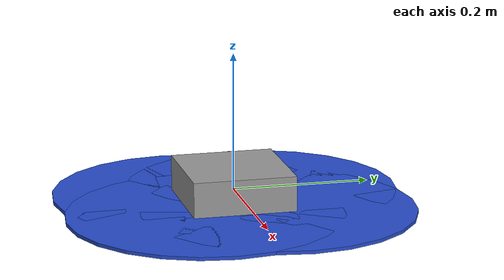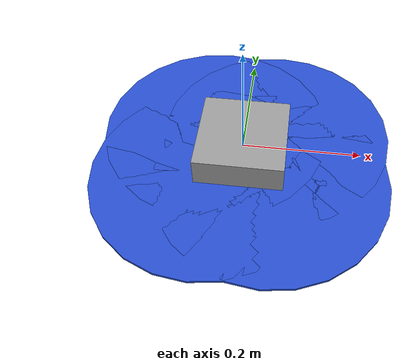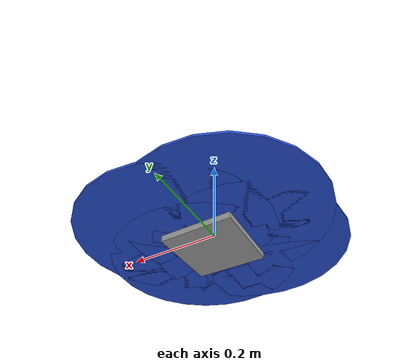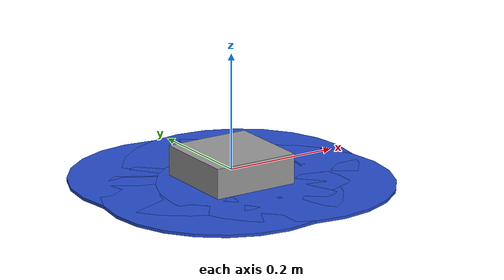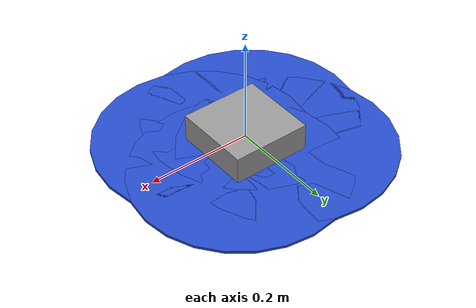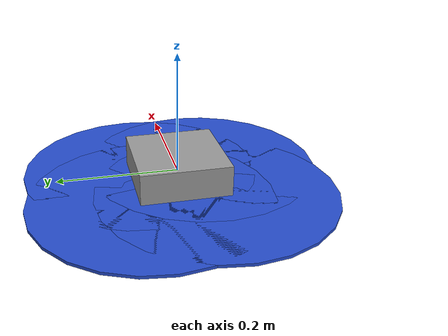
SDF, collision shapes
<?xml version="1.0" ?>

  <sdf version="1.5">
    <model name="follow_uav">

      <include>
        <uri>model://follow_uav_base</uri>
        <name>follow_uav_base</name>
        <pose>0 0 0 0 0 0</pose>
      </include>
      <include>
        <uri>model://follow_uav_prop</uri>
        <name>follow_uav_prop_0</name>
        <pose>0.0535 -0.0535 -0.019 0 0 0</pose>
      </include>
      <include>
        <uri>model://follow_uav_prop</uri>
        <name>follow_uav_prop_1</name>
        <pose>-0.0535 -0.0535 -0.019 0 0 0</pose>
      </include>
      <include>
        <uri>model://follow_uav_prop</uri>
        <name>follow_uav_prop_2</name>
        <pose>-0.0535 0.0535 -0.019 0 0 3.141592653589793</pose>
      </include>
      <include>
        <uri>model://follow_uav_prop</uri>
        <name>follow_uav_prop_3</name>
        <pose>0.0535 0.0535 -0.019 0 0 3.141592653589793</pose>
      </include>

      <joint name="follow_uav_prop_0_joint" type="revolute">
        <parent>follow_uav_base::platform_base</parent>
        <child>follow_uav_prop_0::prop </child>
        <axis>
          <xyz>0 0 1</xyz>
          <limit>
            <lower>-1e+16</lower>
            <upper>1e+16</upper>
          </limit>
          <dynamics>
            <damping>0.00001</damping>
          </dynamics>
          <use_parent_model_frame>1</use_parent_model_frame>
        </axis>
      </joint>

      <plugin name="follow_uav_prop_0_plugin" filename='librotors_gazebo_motor_model.so'>
        <robotNamespace></robotNamespace>
        <jointName>follow_uav_prop_0_joint </jointName>
        <linkName>follow_uav_prop_0::prop</linkName>
        <turningDirection>ccw</turningDirection>
        <timeConstantUp>0.0125</timeConstantUp>
        <timeConstantDown>0.025</timeConstantDown>
        <maxRotVelocity>1000</maxRotVelocity>
        <motorConstant>8.599e-05</motorConstant>
        <momentConstant>0.1</momentConstant>
        <commandSubTopic>/gazebo/command/prop_speed</commandSubTopic>
        <motorNumber>0</motorNumber>
        <rotorDragCoefficient>0.000806428</rotorDragCoefficient>
        <rollingMomentCoefficient>1e-06</rollingMomentCoefficient>
        <motorSpeedPubTopic>prop_speed/0</motorSpeedPubTopic>
        <rotorVelocitySlowdownSim>10</rotorVelocitySlowdownSim>
      </plugin>

      <joint name="follow_uav_prop_1_joint" type="revolute">
        <parent>follow_uav_base::platform_base</parent>
        <child>follow_uav_prop_1::prop </child>
        <axis>
          <xyz>0 0 1</xyz>
          <limit>
            <lower>-1e+16</lower>
            <upper>1e+16</upper>
          </limit>
          <dynamics>
            <damping>0.00001</damping>
          </dynamics>
          <use_parent_model_frame>1</use_parent_model_frame>
        </axis>
      </joint>

      <plugin name="follow_uav_prop_1_plugin" filename='librotors_gazebo_motor_model.so'>
        <robotNamespace></robotNamespace>
        <jointName>follow_uav_prop_1_joint </jointName>
        <linkName>follow_uav_prop_1::prop</linkName>
        <turningDirection>cw</turningDirection>
        <timeConstantUp>0.0125</timeConstantUp>
        <timeConstantDown>0.025</timeConstantDown>
        <maxRotVelocity>1000</maxRotVelocity>
        <motorConstant>8.599e-05</motorConstant>
        <momentConstant>0.1</momentConstant>
        <commandSubTopic>/gazebo/command/prop_speed</commandSubTopic>
        <motorNumber>1</motorNumber>
        <rotorDragCoefficient>0.000806428</rotorDragCoefficient>
        <rollingMomentCoefficient>1e-06</rollingMomentCoefficient>
        <motorSpeedPubTopic>prop_speed/1</motorSpeedPubTopic>
        <rotorVelocitySlowdownSim>10</rotorVelocitySlowdownSim>
      </plugin>

      <joint name="follow_uav_prop_2_joint" type="revolute">
        <parent>follow_uav_base::platform_base</parent>
        <child>follow_uav_prop_2::prop </child>
        <axis>
          <xyz>0 0 1</xyz>
          <limit>
            <lower>-1e+16</lower>
            <upper>1e+16</upper>
          </limit>
          <dynamics>
            <damping>0.00001</damping>
          </dynamics>
          <use_parent_model_frame>1</use_parent_model_frame>
        </axis>
      </joint>

      <plugin name="follow_uav_prop_2_plugin" filename='librotors_gazebo_motor_model.so'>
        <robotNamespace></robotNamespace>
        <jointName>follow_uav_prop_2_joint </jointName>
        <linkName>follow_uav_prop_2::prop</linkName>
        <turningDirection>ccw</turningDirection>
        <timeConstantUp>0.0125</timeConstantUp>
        <timeConstantDown>0.025</timeConstantDown>
        <maxRotVelocity>1000</maxRotVelocity>
        <motorConstant>8.599e-05</motorConstant>
        <momentConstant>0.1</momentConstant>
        <commandSubTopic>/gazebo/command/prop_speed</commandSubTopic>
        <motorNumber>2</motorNumber>
        <rotorDragCoefficient>0.000806428</rotorDragCoefficient>
        <rollingMomentCoefficient>1e-06</rollingMomentCoefficient>
        <motorSpeedPubTopic>prop_speed/2</motorSpeedPubTopic>
        <rotorVelocitySlowdownSim>10</rotorVelocitySlowdownSim>
      </plugin>

      <joint name="follow_uav_prop_3_joint" type="revolute">
        <parent>follow_uav_base::platform_base</parent>
        <child>follow_uav_prop_3::prop </child>
        <axis>
          <xyz>0 0 1</xyz>
          <limit>
            <lower>-1e+16</lower>
            <upper>1e+16</upper>
          </limit>
          <dynamics>
            <damping>0.00001</damping>
          </dynamics>
          <use_parent_model_frame>1</use_parent_model_frame>
        </axis>
      </joint>

      <plugin name="follow_uav_prop_3_plugin" filename='librotors_gazebo_motor_model.so'>
        <robotNamespace></robotNamespace>
        <jointName>follow_uav_prop_3_joint </jointName>
        <linkName>follow_uav_prop_3::prop</linkName>
        <turningDirection>cw</turningDirection>
        <timeConstantUp>0.0125</timeConstantUp>
        <timeConstantDown>0.025</timeConstantDown>
        <maxRotVelocity>1000</maxRotVelocity>
        <motorConstant>8.599e-05</motorConstant>
        <momentConstant>0.1</momentConstant>
        <commandSubTopic>/gazebo/command/prop_speed</commandSubTopic>
        <motorNumber>3</motorNumber>
        <rotorDragCoefficient>0.000806428</rotorDragCoefficient>
        <rollingMomentCoefficient>1e-06</rollingMomentCoefficient>
        <motorSpeedPubTopic>prop_speed/3</motorSpeedPubTopic>
        <rotorVelocitySlowdownSim>10</rotorVelocitySlowdownSim>
      </plugin>

    <plugin name="ArduRotorNormPlugin" filename="libArduRotorNormPlugin.so">
      <fdm_addr>127.0.0.1</fdm_addr>
      <fdm_port_in>9002</fdm_port_in>
      <fdm_port_out>9003</fdm_port_out>
      <modelXYZToAirplaneXForwardZDown>0 0 0 3.141593 0 0</modelXYZToAirplaneXForwardZDown>
      <gazeboXYZToNED>0 0 0 3.141593 0 0</gazeboXYZToNED>
      <motor_num>4</motor_num>
      <servo_num>0</servo_num>
      <motor_pub>/gazebo/command/prop_speed</motor_pub>
      <imuName>follow_uav_base::imu_link::imu_sensor</imuName>
      <connectionTimeoutMaxCount>5</connectionTimeoutMaxCount>
    </plugin>
  </model>

</sdf>

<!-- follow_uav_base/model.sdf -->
<sdf version="1.5">
  <model name="follow_uav_platform">

    <link name="platform_base">
      <pose>0 0 0.0  0 0 0</pose>
      <inertial>
        <pose>0 0 0 0 0 0</pose>
        <mass>5.5</mass>
        <inertia>
          <ixx>0.5</ixx>
          <iyy>0.5</iyy>
          <izz>0.2</izz>
          <ixy>0</ixy>
          <ixz>0</ixz>
          <iyz>0</iyz>
        </inertia>
      </inertial>
      <collision name="platform_base_collision">
        <pose>0 0 0  0 0 0</pose>
        <geometry>
          <box>
            <size>0.150 0.150 0.07</size>
          </box>
        </geometry>
        <surface>
          <contact>
            <ode>
              <max_vel>100.0</max_vel>
              <min_depth>0.001</min_depth>
            </ode>
          </contact>
          <friction>
            <ode>
              <mu>100000.0</mu>
              <mu2>100000.0</mu2>
            </ode>
          </friction>
        </surface>
      </collision>
      <visual name="platform_base_visual">
        <geometry>
          <mesh>
            <uri>model://follow_uav_base/meshes/body.STL</uri>
          </mesh>
        </geometry>
        <material>
          <ambient>0.6 0.6 0.6 1.0</ambient>          <!-- 稍亮的灰色 -->
          <diffuse>0.6 0.6 0.6 1.0</diffuse>
          <specular>0.5 0.5 0.5 1.0</specular>
          <emissive>0.0 0.0 0.0 1.0</emissive>
        </material>
      </visual>
    </link>
    <link name='imu_link'>
      <inertial>
        <pose>0 0 0 0 0 0</pose>
        <mass>0.15</mass>
        <inertia>
          <ixx>0.00001</ixx>
          <ixy>0</ixy>
          <ixz>0</ixz>
          <iyy>0.00002</iyy>
          <iyz>0</iyz>
          <izz>0.00002</izz>
        </inertia>
      </inertial>
      <sensor name="imu_sensor" type="imu">
        <pose>0 0 0 3.141593 0 0</pose>
        <always_on>1</always_on>
        <update_rate>1000.0</update_rate>
        <topic>__default_topic__</topic>
      </sensor>
    </link>
    <joint name='imu_joint' type='revolute'>
      <child>imu_link</child>
      <parent>platform_base</parent>
      <axis>
        <xyz>0 0 1</xyz>
        <limit>
          <lower>-0.0001</lower>
          <upper>0.00001</upper>
          <effort>0</effort>
          <velocity>0</velocity>
        </limit>
        <dynamics>
          <damping>1.0</damping>
        </dynamics>
        <use_parent_model_frame>1</use_parent_model_frame>
      </axis>
      <physics>
        <ode>
          <implicit_spring_damper>1</implicit_spring_damper>
        </ode>
      </physics>
    </joint>

  </model>
</sdf>

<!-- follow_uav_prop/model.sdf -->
<sdf version="1.5">
    <model name="follow_uav_prop">
      <link name='prop'>
      <pose>0.0 -0.0 0.0 0 -0 0</pose>
      <inertial>
        <pose>0 0 0 0 -0 0</pose>
        <mass>0.025</mass>
        <inertia>
          <ixx>9.75e-06</ixx>
          <ixy>0</ixy>
          <ixz>0</ixz>
          <iyy>0.000166704</iyy>
          <iyz>0</iyz>
          <izz>0.000167604</izz>
        </inertia>
      </inertial>
      <collision name='rotor_collision'>
        <pose>0 0 0 0 -0 0</pose>
        <geometry>
          <cylinder>
            <length>0.005</length>
            <radius>0.2</radius>
          </cylinder>
        </geometry>
        <surface>
          <contact>
            <ode />
          </contact>
          <friction>
            <ode />
          </friction>
        </surface>
      </collision>
      <visual name='prop_visual'>
        <pose>0 0 0 0 -0 0</pose>
        <geometry>
          <mesh>
            <scale>1 1 1</scale>
            <uri>model://follow_uav_prop/meshes/prop.STL</uri>
          </mesh>
        </geometry>
        <material>
          <script>
            <name>Gazebo/Blue</name>
            <uri>__default__</uri>
          </script>
        </material>
      </visual>
      <gravity>1</gravity>
      <velocity_decay />
      <self_collide>0</self_collide>
    </link>
  </model>
</sdf>
